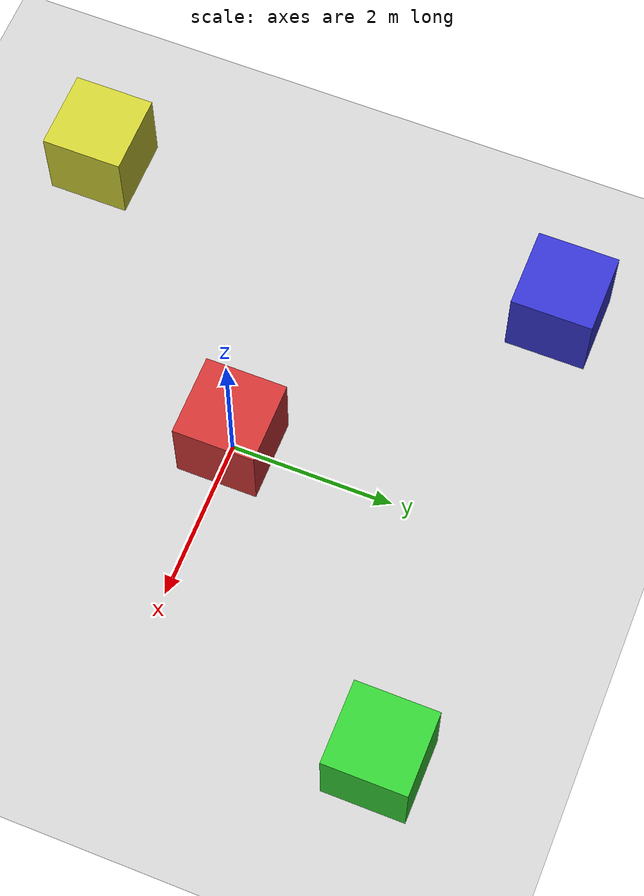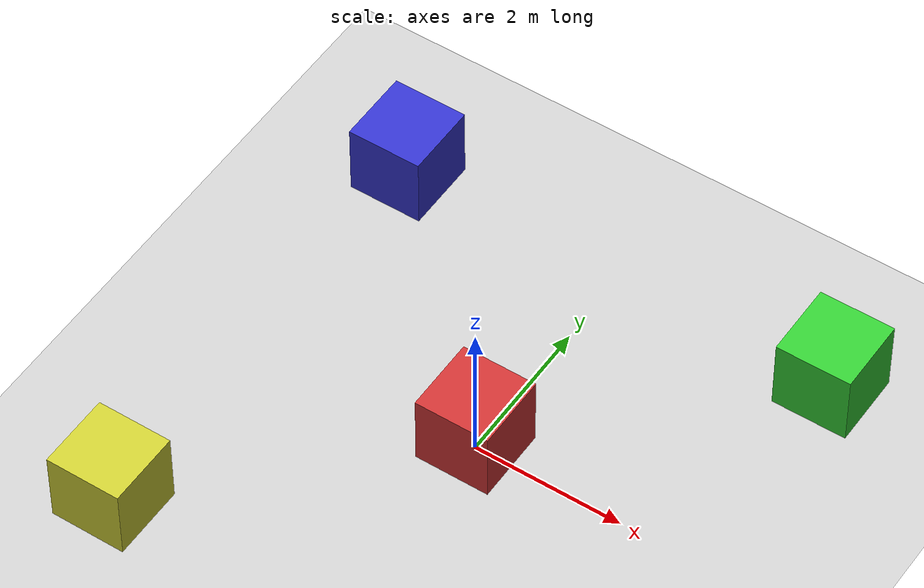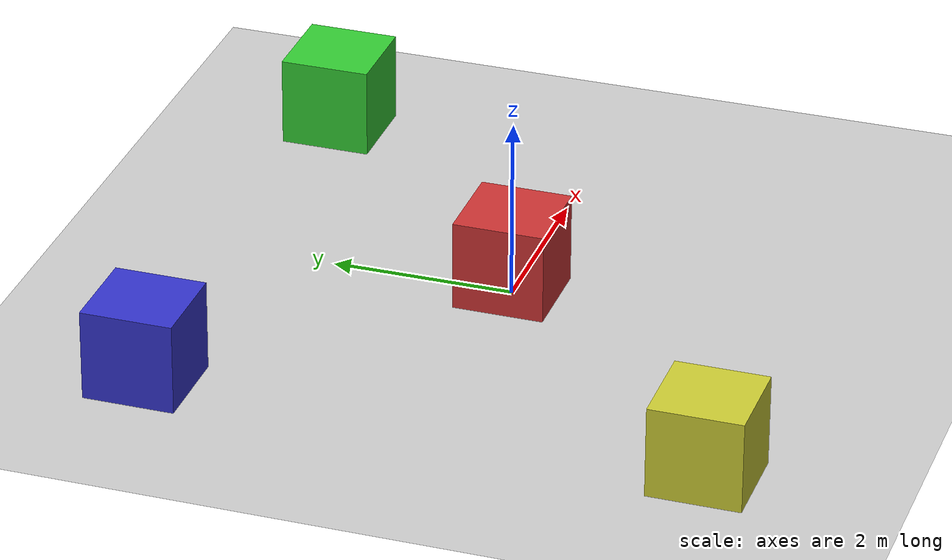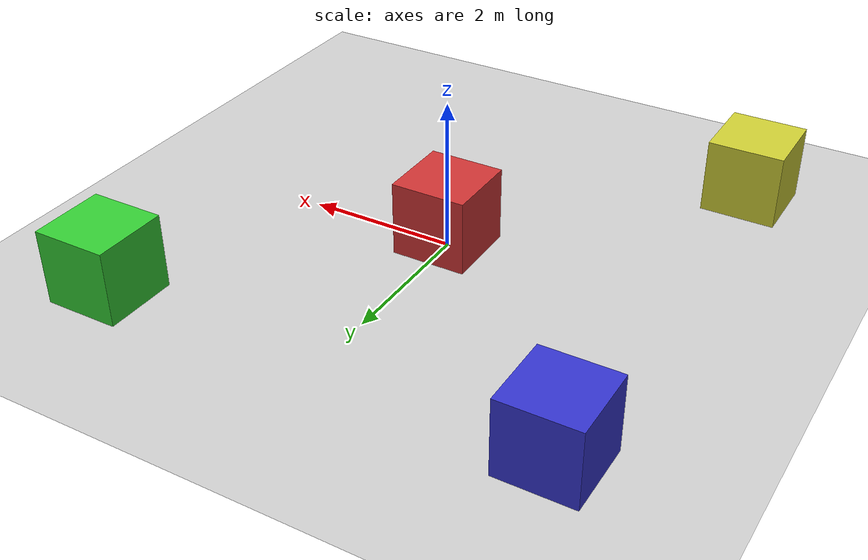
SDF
<?xml version="1.0" ?>
<sdf version="1.6">
  <world name="default">

    <!-- ─────────── ESCENA: iluminación & desactivar sombras ─────────── -->
    <scene>
      <ambient>0.4 0.4 0.4 1</ambient>
      <background>0.7 0.7 0.7 1</background>
      <shadows>false</shadows>
    </scene>

    <!-- ─────────── PLUGINS ROS–GAZEBO ─────────── -->
    <plugin name="gazebo_ros_api_plugin" filename="libgazebo_ros_api_plugin.so"/>
    <plugin name="gazebo_ros_factory"  filename="libgazebo_ros_factory.so"/>
    <plugin name="gazebo_ros_state"    filename="libgazebo_ros_state.so"/>

    <!-- ─────────── SOL y SUELO ─────────── -->
    <include><uri>model://sun</uri></include>
    <include><uri>model://ground_plane</uri></include>

    <!-- ─────────── FÍSICA ─────────── -->
    <physics name="default_physics" type="ode">
      <real_time_factor>1.0</real_time_factor>
      <real_time_update_rate>1000</real_time_update_rate>
      <max_step_size>0.004</max_step_size>
      <use_real_time>false</use_real_time>
      <ode>
        <solver><type>quick</type><iters>40</iters><sor>1.3</sor></solver>
        <constraints><cfm>1e-5</cfm><erp>0.3</erp></constraints>
      </ode>
    </physics>

    <!-- ─────────── GUI ─────────── -->
    <gui fullscreen="0">
      <camera name="user_camera">
        <pose>0 -18 15 0.5 0.8 0</pose>
        <view_controller>orbit</view_controller>
        <projection_type>perspective</projection_type>
      </camera>
    </gui>

    <!-- 📦 CAJAS DINÁMICAS CON MOVIMIENTOS AUTOMÁTICOS                                   -->

    <!-- 🔄 CAJA 00: Movimiento horizontal (izquierda-derecha) -->
    <model name="box_00">
      <pose>0 0 0.5 0 0 0</pose>
      <static>false</static>  <!-- IMPORTANTE: false para permitir movimiento -->

      <link name="link">
        <!-- Propiedades físicas para movimiento suave -->
        <inertial>
          <mass>10.0</mass>  <!-- Masa moderada para estabilidad -->
          <inertia>
            <ixx>1.67</ixx><iyy>1.67</iyy><izz>1.67</izz>
            <ixy>0</ixy><ixz>0</ixz><iyz>0</iyz>
          </inertia>
        </inertial>

        <!-- Geometría visual -->
        <visual name="visual">
          <geometry>
            <box><size>1 1 1</size></box>
          </geometry>
          <material>
            <ambient>0.8 0.2 0.2 1</ambient>  <!-- Rojo para identificar -->
            <diffuse>0.8 0.2 0.2 1</diffuse>
          </material>
        </visual>

        <!-- Geometría de colisión -->
        <collision name="collision">
          <geometry>
            <box><size>1 1 1</size></box>
          </geometry>
          <!-- Propiedades de fricción para movimiento controlado -->
          <surface>
            <friction>
              <ode><mu>0.1</mu><mu2>0.1</mu2></ode>  <!-- Baja fricción -->
            </friction>
            <bounce><restitution_coefficient>0.1</restitution_coefficient></bounce>
          </surface>
        </collision>
      </link>

      <!-- 🎯 PLUGIN DE MOVIMIENTO HORIZONTAL -->
      <plugin name="oscillating_movement" filename="libgazebo_ros_force.so">
        <ros>
          <namespace>/box_00</namespace>
          <remapping>gazebo_ros_force:=force_control</remapping>
        </ros>
        <link_name>link</link_name>
      </plugin>
    </model>

    <!-- 🔄 CAJA 01: Movimiento vertical (adelante-atrás) -->
    <model name="box_01">
      <pose>3 3 0.5 0 0 0</pose>
      <static>false</static>

      <link name="link">
        <inertial>
          <mass>10.0</mass>
          <inertia>
            <ixx>1.67</ixx><iyy>1.67</iyy><izz>1.67</izz>
            <ixy>0</ixy><ixz>0</ixz><iyz>0</iyz>
          </inertia>
        </inertial>

        <visual name="visual">
          <geometry>
            <box><size>1 1 1</size></box>
          </geometry>
          <material>
            <ambient>0.2 0.8 0.2 1</ambient>  <!-- Verde para identificar -->
            <diffuse>0.2 0.8 0.2 1</diffuse>
          </material>
        </visual>

        <collision name="collision">
          <geometry>
            <box><size>1 1 1</size></box>
          </geometry>
          <surface>
            <friction>
              <ode><mu>0.1</mu><mu2>0.1</mu2></ode>
            </friction>
            <bounce><restitution_coefficient>0.1</restitution_coefficient></bounce>
          </surface>
        </collision>
      </link>

      <!-- 🎯 PLUGIN DE MOVIMIENTO VERTICAL -->
      <plugin name="oscillating_movement" filename="libgazebo_ros_force.so">
        <ros>
          <namespace>/box_01</namespace>
          <remapping>gazebo_ros_force:=force_control</remapping>
        </ros>
        <link_name>link</link_name>
      </plugin>
    </model>

    <!-- 🔄 CAJA 02: Movimiento diagonal -->
    <model name="box_02">
      <pose>-3 3 0.5 0 0 0</pose>
      <static>false</static>

      <link name="link">
        <inertial>
          <mass>10.0</mass>
          <inertia>
            <ixx>1.67</ixx><iyy>1.67</iyy><izz>1.67</izz>
            <ixy>0</ixy><ixz>0</ixz><iyz>0</iyz>
          </inertia>
        </inertial>

        <visual name="visual">
          <geometry>
            <box><size>1 1 1</size></box>
          </geometry>
          <material>
            <ambient>0.2 0.2 0.8 1</ambient>  <!-- Azul para identificar -->
            <diffuse>0.2 0.2 0.8 1</diffuse>
          </material>
        </visual>

        <collision name="collision">
          <geometry>
            <box><size>1 1 1</size></box>
          </geometry>
          <surface>
            <friction>
              <ode><mu>0.1</mu><mu2>0.1</mu2></ode>
            </friction>
            <bounce><restitution_coefficient>0.1</restitution_coefficient></bounce>
          </surface>
        </collision>
      </link>

      <!-- 🎯 PLUGIN DE MOVIMIENTO DIAGONAL -->
      <plugin name="oscillating_movement" filename="libgazebo_ros_force.so">
        <ros>
          <namespace>/box_02</namespace>
          <remapping>gazebo_ros_force:=force_control</remapping>
        </ros>
        <link_name>link</link_name>
      </plugin>
    </model>

    <!-- 🔄 CAJA 03: Movimiento circular -->
    <model name="box_03">
      <pose>-3 -3 0.5 0 0 0</pose>
      <static>false</static>

      <link name="link">
        <inertial>
          <mass>10.0</mass>
          <inertia>
            <ixx>1.67</ixx><iyy>1.67</iyy><izz>1.67</izz>
            <ixy>0</ixy><ixz>0</ixz><iyz>0</iyz>
          </inertia>
        </inertial>

        <visual name="visual">
          <geometry>
            <box><size>1 1 1</size></box>
          </geometry>
          <material>
            <ambient>0.8 0.8 0.2 1</ambient>  <!-- Amarillo para identificar -->
            <diffuse>0.8 0.8 0.2 1</diffuse>
          </material>
        </visual>

        <collision name="collision">
          <geometry>
            <box><size>1 1 1</size></box>
          </geometry>
          <surface>
            <friction>
              <ode><mu>0.1</mu><mu2>0.1</mu2></ode>
            </friction>
            <bounce><restitution_coefficient>0.1</restitution_coefficient></bounce>
          </surface>
        </collision>
      </link>

      <!-- 🎯 PLUGIN DE MOVIMIENTO CIRCULAR -->
      <plugin name="oscillating_movement" filename="libgazebo_ros_force.so">
        <ros>
          <namespace>/box_03</namespace>
          <remapping>gazebo_ros_force:=force_control</remapping>
        </ros>
        <link_name>link</link_name>
      </plugin>
    </model>

    <!-- 🔄 CAJA 04: Movimiento circular -->
    <model name="box_04">
      <pose>-3 -3 0.5 0 0 0</pose>
      <static>false</static>

      <link name="link">
        <inertial>
          <mass>10.0</mass>
          <inertia>
            <ixx>1.67</ixx><iyy>1.67</iyy><izz>1.67</izz>
            <ixy>0</ixy><ixz>0</ixz><iyz>0</iyz>
          </inertia>
        </inertial>

        <visual name="visual">
          <geometry>
            <box><size>1 1 1</size></box>
          </geometry>
          <material>
            <ambient>0.8 0.8 0.2 1</ambient>  <!-- Amarillo para identificar -->
            <diffuse>0.8 0.8 0.2 1</diffuse>
          </material>
        </visual>

        <collision name="collision">
          <geometry>
            <box><size>1 1 1</size></box>
          </geometry>
          <surface>
            <friction>
              <ode><mu>0.1</mu><mu2>0.1</mu2></ode>
            </friction>
            <bounce><restitution_coefficient>0.1</restitution_coefficient></bounce>
          </surface>
        </collision>
      </link>

      <!-- 🎯 PLUGIN DE MOVIMIENTO CIRCULAR -->
      <plugin name="oscillating_movement" filename="libgazebo_ros_force.so">
        <ros>
          <namespace>/box_04</namespace>
          <remapping>gazebo_ros_force:=force_control</remapping>
        </ros>
        <link_name>link</link_name>
      </plugin>
    </model>

    <!-- 🔄 CAJA 05: Movimiento circular -->
    <model name="box_05">
      <pose>-3 -3 0.5 0 0 0</pose>
      <static>false</static>

      <link name="link">
        <inertial>
          <mass>10.0</mass>
          <inertia>
            <ixx>1.67</ixx><iyy>1.67</iyy><izz>1.67</izz>
            <ixy>0</ixy><ixz>0</ixz><iyz>0</iyz>
          </inertia>
        </inertial>

        <visual name="visual">
          <geometry>
            <box><size>1 1 1</size></box>
          </geometry>
          <material>
            <ambient>0.8 0.8 0.2 1</ambient>  <!-- Amarillo para identificar -->
            <diffuse>0.8 0.8 0.2 1</diffuse>
          </material>
        </visual>

        <collision name="collision">
          <geometry>
            <box><size>1 1 1</size></box>
          </geometry>
          <surface>
            <friction>
              <ode><mu>0.1</mu><mu2>0.1</mu2></ode>
            </friction>
            <bounce><restitution_coefficient>0.1</restitution_coefficient></bounce>
          </surface>
        </collision>
      </link>

      <!-- 🎯 PLUGIN DE MOVIMIENTO CIRCULAR -->
      <plugin name="oscillating_movement" filename="libgazebo_ros_force.so">
        <ros>
          <namespace>/box_05</namespace>
          <remapping>gazebo_ros_force:=force_control</remapping>
        </ros>
        <link_name>link</link_name>
      </plugin>
    </model>

  </world>
</sdf>
